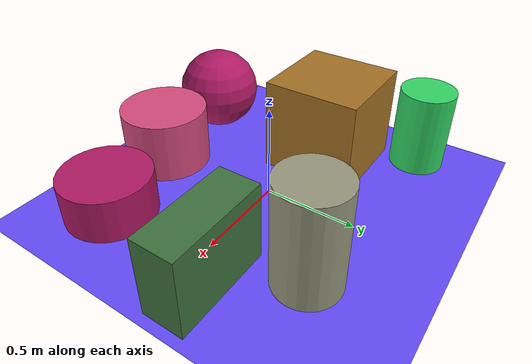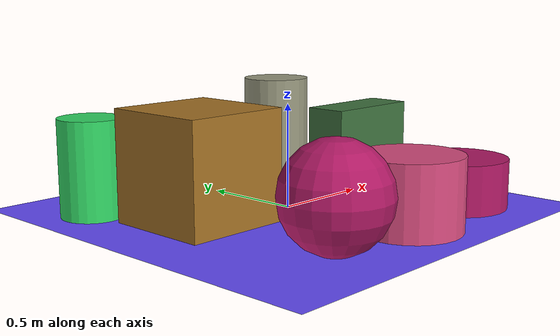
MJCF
<mujoco>
   <asset>
<texture type="skybox" builtin="gradient" rgb1="1.0 0.7 0.0" rgb2="0.1 0.9 0.7" width="256" height="256"/>
<texture name="flat_0" builtin="flat" rgb1="0.7 0.1 0.4" rgb2="0.7 0.1 0.4"  width="200" height="200"/>
<texture name="gradient_1" builtin="gradient" rgb1="0.3 0.6 0.3" rgb2="1.0 0.3 0.0" width="200" height="200"/>
<texture name="flat_2" builtin="flat" rgb1="0.7 0.1 0.4" rgb2="0.7 0.1 0.4"  width="200" height="200"/>
<texture name="gradient_3" builtin="gradient" rgb1="0.4 0.0 0.1" rgb2="0.1 0.9 0.4" width="200" height="200"/>
<texture name="checker_4" builtin="checker" type="2d" rgb1="0.6 0.5 0.5" rgb2="0.6 0.7 0.5" width="200" height="200"/>
<texture name="checker_5" builtin="checker" type="2d" rgb1="0.1 0.7 0.3" rgb2="0.3 1.0 0.5" width="200" height="200"/>
<texture name="checker_6" builtin="checker" type="2d" rgb1="0.7 0.0 0.7" rgb2="1.0 0.6 0.3" width="200" height="200"/><material name="flat_0_mat" reflectance="0" texture="flat_0" texuniform="true"/>
<material name="gradient_1_mat" reflectance="0" texture="gradient_1" texuniform="true"/>
<material name="flat_2_mat" reflectance="0" texture="flat_2" texuniform="true"/>
<material name="gradient_3_mat" reflectance="0" texture="gradient_3" texuniform="true"/>
<material name="checker_4_mat" reflectance="0" texrepeat="4 4" texture="checker_4" texuniform="false" />
<material name="checker_5_mat" reflectance="0" texrepeat="10 10" texture="checker_5" texuniform="false" />
<material name="checker_6_mat" reflectance="0" texrepeat="4 4" texture="checker_6" texuniform="false" />
   </asset>

   <worldbody>
      <light diffuse=".9 .9 .9" pos="0 0 3" dir="0 0 -1"/>
     <geom type="plane" size="1 1 0.1" rgba="0.4 0.3 1.0 1"/>
<geom type="sphere" pos="-0.45 -0.68 0.24" size="0.24 0.24 0.24" material="flat_0_mat" />
<geom type="box" pos="-0.47 0.1 0.26" size="0.26 0.26 0.26" material="gradient_1_mat" />
<geom type="cylinder" pos="0.58 -0.58 0.12" size="0.24 0.12 0.12" material="flat_2_mat" />
<geom type="box" pos="0.68 0.12 0.21" size="0.27 0.11 0.21" material="gradient_3_mat" />
<geom type="cylinder" pos="0.42 0.48 0.28" size="0.17 0.28 0.28" material="checker_4_mat" />
<geom type="cylinder" pos="-0.73 0.55 0.23" size="0.15 0.23 0.23" material="checker_5_mat" />
<geom type="cylinder" pos="0.06 -0.67 0.17" size="0.24 0.17 0.17" material="checker_6_mat" /><camera euler="60 0 180" fovy="60" name="camera_a" pos="0 -1.5 1"></camera>   </worldbody>
</mujoco>
